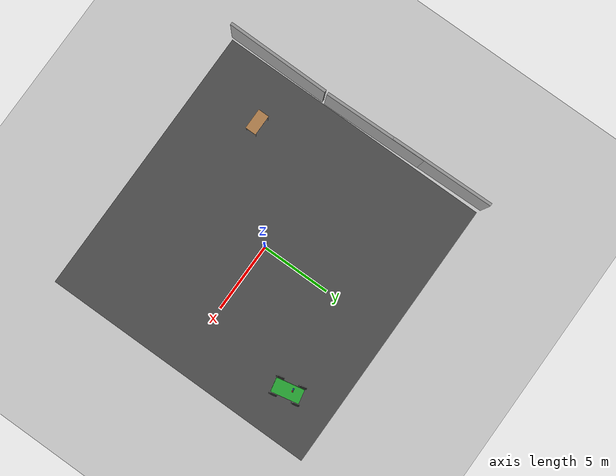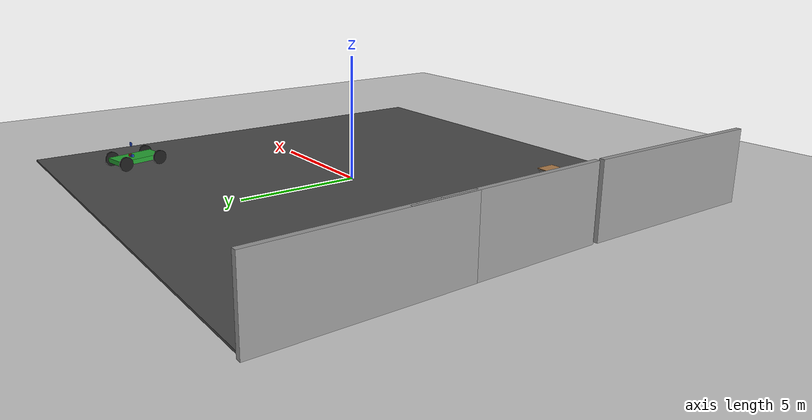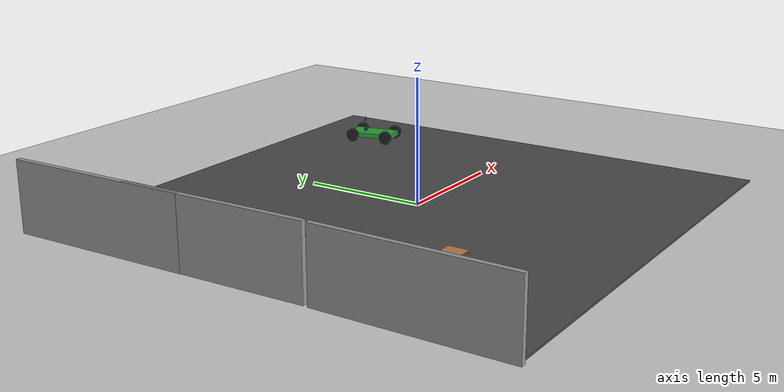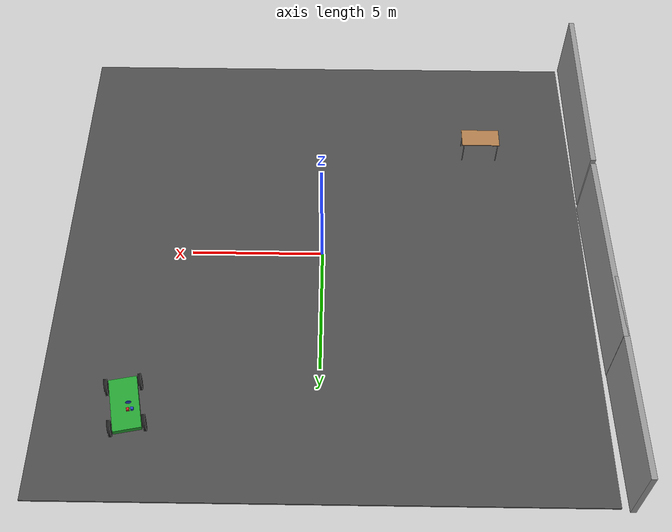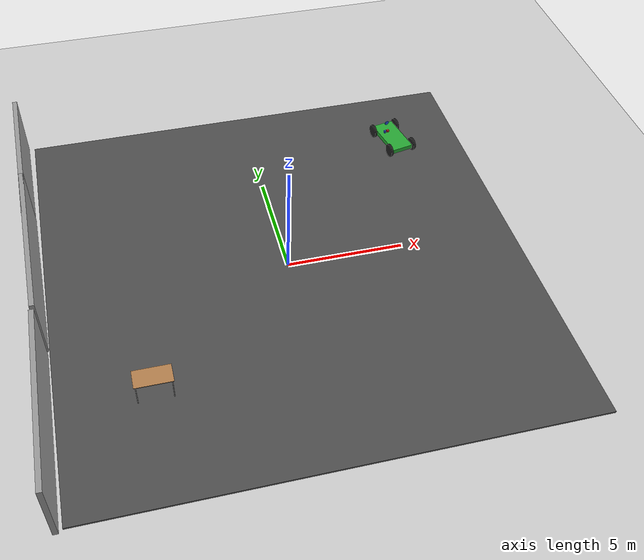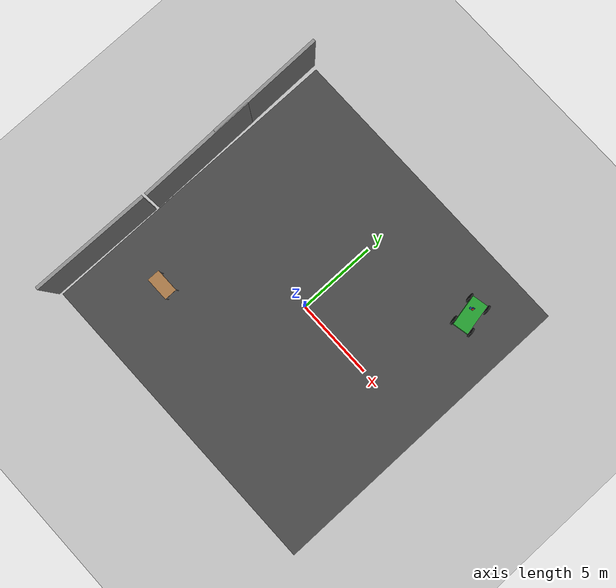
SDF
<sdf version="1.7">
 <world name="default">
  <light name="sun" type="directional">
   <pose>0 0 10 0 -0 0</pose>
   <diffuse>0.8 0.8 0.8 1</diffuse>
   <specular>0.2 0.2 0.2 1</specular>
   <attenuation>
    <range>1000</range>
    <constant>0.9</constant>
    <linear>0.01</linear>
    <quadratic>0.001</quadratic>
   </attenuation>
   <direction>-0.5 0.1 -0.9</direction>
   <spot><inner_angle>0</inner_angle><outer_angle>0</outer_angle><falloff>0</falloff></spot>
  </light>
  <model name="ground_plane">
   <static>1</static>
   <link name="link">
    <collision name="collision">
     <geometry><plane><normal>0 0 1</normal><size>100 100</size></plane></geometry>
     <surface><friction><ode><mu>100</mu><mu2>50</mu2></ode></friction></surface>
    </collision>
    <visual name="visual">
     <cast_shadows>0</cast_shadows>
     <geometry><plane><normal>0 0 1</normal><size>100 100</size></plane></geometry>
     <material>
      <script><uri>file://media/materials/scripts/gazebo.material</uri><name>Gazebo/Grey</name></script>
     </material>
    </visual>
   </link>
  </model>
  <gravity>0 0 -9.8</gravity>
  <magnetic_field>6e-06 2.3e-05 -4.2e-05</magnetic_field>
  <atmosphere type="adiabatic"/>
  <physics type="ode">
   <max_step_size>0.002</max_step_size>
   <real_time_factor>1</real_time_factor>
   <real_time_update_rate>400</real_time_update_rate>
  </physics>
  <scene><ambient>0.4 0.4 0.4 1</ambient><background>0.7 0.7 0.7 1</background><shadows>1</shadows></scene>
  <spherical_coordinates>
   <surface_model>EARTH_WGS84</surface_model>
   <latitude_deg>38.42390688</latitude_deg>
   <longitude_deg>110.7852678</longitude_deg>
   <elevation>488.0</elevation>
   <heading_deg>180</heading_deg>
  </spherical_coordinates>
  <model name="asphalt_plane">
   <static>1</static>
   <link name="link">
    <collision name="collision"><geometry><box><size>20 20 0.1</size></box></geometry></collision>
    <visual name="visual">
     <cast_shadows>0</cast_shadows>
     <geometry><box><size>20 20 0.1</size></box></geometry>
     <material>
      <script>
       <uri>model://asphalt_plane/materials/scripts</uri>
       <uri>model://asphalt_plane/materials/textures</uri>
       <name>vrc/asphalt</name>
      </script>
     </material>
    </visual>
   </link>
   <pose>-0.066287 0.086676 0 0 -0 0</pose>
  </model>
  <model name="grey_wall">
   <static>1</static>
   <link name="link">
    <pose>0 0 1.4 0 -0 0</pose>
    <collision name="collision"><geometry><box><size>7.5 0.2 2.8</size></box></geometry></collision>
    <visual name="visual">
     <cast_shadows>0</cast_shadows>
     <geometry><box><size>7.5 0.2 2.8</size></box></geometry>
     <material>
      <script>
       <uri>model://grey_wall/materials/scripts</uri>
       <uri>model://grey_wall/materials/textures</uri>
       <name>vrc/grey_wall</name>
      </script>
     </material>
    </visual>
   </link>
   <pose>-10.2691 -6.29918 0 -0.000678 0.001381 -1.58062</pose>
  </model>
  <model name="grey_wall_clone">
   <static>1</static>
   <link name="link">
    <pose>0 0 1.4 0 -0 0</pose>
    <collision name="collision"><geometry><box><size>7.5 0.2 2.8</size></box></geometry></collision>
    <visual name="visual">
     <cast_shadows>0</cast_shadows>
     <geometry><box><size>7.5 0.2 2.8</size></box></geometry>
     <material>
      <script>
       <uri>model://grey_wall/materials/scripts</uri>
       <uri>model://grey_wall/materials/textures</uri>
       <name>vrc/grey_wall</name>
      </script>
     </material>
    </visual>
   </link>
   <pose>-10.2657 1.37707 0 0 -0 1.58739</pose>
  </model>
  <model name="grey_wall_clone_clone">
   <static>1</static>
   <link name="link">
    <pose>0 0 1.4 0 -0 0</pose>
    <collision name="collision"><geometry><box><size>7.5 0.2 2.8</size></box></geometry></collision>
    <visual name="visual">
     <cast_shadows>0</cast_shadows>
     <geometry><box><size>7.5 0.2 2.8</size></box></geometry>
     <material>
      <script>
       <uri>model://grey_wall/materials/scripts</uri>
       <uri>model://grey_wall/materials/textures</uri>
       <name>vrc/grey_wall</name>
      </script>
     </material>
    </visual>
   </link>
   <pose>-10.3624 6.45785 0 0 -0 1.58739</pose>
  </model>
  <light name="user_directional_light_0" type="directional">
   <pose>-5.63054 -11.2657 1 0 -0 0</pose>
   <diffuse>0.5 0.5 0.5 1</diffuse>
   <specular>0.1 0.1 0.1 1</specular>
   <direction>0.1 0.1 -0.9</direction>
   <attenuation>
    <range>20</range>
    <constant>0.5</constant>
    <linear>0.01</linear>
    <quadratic>0.001</quadratic>
   </attenuation>
   <spot><inner_angle>0</inner_angle><outer_angle>0</outer_angle><falloff>0</falloff></spot>
  </light>
  <light name="user_directional_light_1" type="directional">
   <pose>10.4762 9.60881 1 0 -0 0</pose>
   <diffuse>0.5 0.5 0.5 1</diffuse>
   <specular>0.1 0.1 0.1 1</specular>
   <direction>0.1 0.1 -0.9</direction>
   <attenuation>
    <range>20</range>
    <constant>0.5</constant>
    <linear>0.01</linear>
    <quadratic>0.001</quadratic>
   </attenuation>
   <spot><inner_angle>0</inner_angle><outer_angle>0</outer_angle><falloff>0</falloff></spot>
  </light>
  <audio><device>default</device></audio>
  <model name="marble_1_5cm">
   <link name="link">
    <pose>0 0 0.0075 0 -0 0</pose>
    <inertial>
     <mass>0.0062</mass>
     <inertia>
      <ixx>1.395e-07</ixx>
      <ixy>0</ixy>
      <ixz>0</ixz>
      <iyy>1.395e-07</iyy>
      <iyz>0</iyz>
      <izz>1.395e-07</izz>
     </inertia>
    </inertial>
    <collision name="collision">
     <geometry><sphere><radius>0.0075</radius></sphere></geometry>
     <surface>
      <contact>
       <poissons_ratio>0.22</poissons_ratio>
       <elastic_modulus>5.1e+10</elastic_modulus>
       <ode><kp>100000</kp><kd>100</kd><max_vel>100</max_vel><min_depth>0.001</min_depth></ode>
      </contact>
      <friction>
       <torsional>
        <coefficient>1</coefficient>
        <use_patch_radius>0</use_patch_radius>
        <surface_radius>0.01</surface_radius>
       </torsional>
      </friction>
     </surface>
    </collision>
    <visual name="visual">
     <geometry><sphere><radius>0.0075</radius></sphere></geometry>
     <material>
      <script><uri>file://media/materials/scripts/gazebo.material</uri><name>Gazebo/Blue</name></script>
     </material>
    </visual>
    <velocity_decay><linear>0</linear><angular>0.005</angular></velocity_decay>
   </link>
   <pose>-0.928945 -7.80884 0.048999 0 -0 0</pose>
  </model>
  <model name="table">
   <static>1</static>
   <link name="link">
    <collision name="surface">
     <pose>0 0 1 0 -0 0</pose>
     <geometry><box><size>1.5 0.8 0.03</size></box></geometry>
     <surface><friction><ode><mu>0.6</mu><mu2>0.6</mu2></ode></friction></surface>
    </collision>
    <visual name="visual1">
     <pose>0 0 1 0 -0 0</pose>
     <geometry><box><size>1.5 0.8 0.03</size></box></geometry>
     <material>
      <script><uri>file://media/materials/scripts/gazebo.material</uri><name>Gazebo/Wood</name></script>
     </material>
    </visual>
    <collision name="front_left_leg">
     <pose>0.68 0.38 0.5 0 -0 0</pose>
     <geometry><cylinder><radius>0.02</radius><length>1</length></cylinder></geometry>
    </collision>
    <visual name="front_left_leg">
     <pose>0.68 0.38 0.5 0 -0 0</pose>
     <geometry><cylinder><radius>0.02</radius><length>1</length></cylinder></geometry>
     <material>
      <script><uri>file://media/materials/scripts/gazebo.material</uri><name>Gazebo/Grey</name></script>
     </material>
    </visual>
    <collision name="front_right_leg">
     <pose>0.68 -0.38 0.5 0 -0 0</pose>
     <geometry><cylinder><radius>0.02</radius><length>1</length></cylinder></geometry>
    </collision>
    <visual name="front_right_leg">
     <pose>0.68 -0.38 0.5 0 -0 0</pose>
     <geometry><cylinder><radius>0.02</radius><length>1</length></cylinder></geometry>
     <material>
      <script><uri>file://media/materials/scripts/gazebo.material</uri><name>Gazebo/Grey</name></script>
     </material>
    </visual>
    <collision name="back_right_leg">
     <pose>-0.68 -0.38 0.5 0 -0 0</pose>
     <geometry><cylinder><radius>0.02</radius><length>1</length></cylinder></geometry>
    </collision>
    <visual name="back_right_leg">
     <pose>-0.68 -0.38 0.5 0 -0 0</pose>
     <geometry><cylinder><radius>0.02</radius><length>1</length></cylinder></geometry>
     <material>
      <script><uri>file://media/materials/scripts/gazebo.material</uri><name>Gazebo/Grey</name></script>
     </material>
    </visual>
    <collision name="back_left_leg">
     <pose>-0.68 0.38 0.5 0 -0 0</pose>
     <geometry><cylinder><radius>0.02</radius><length>1</length></cylinder></geometry>
    </collision>
    <visual name="back_left_leg">
     <pose>-0.68 0.38 0.5 0 -0 0</pose>
     <geometry><cylinder><radius>0.02</radius><length>1</length></cylinder></geometry>
     <material>
      <script><uri>file://media/materials/scripts/gazebo.material</uri><name>Gazebo/Grey</name></script>
     </material>
    </visual>
   </link>
   <pose>-6.34686 -5.17133 0 0 -0 0</pose>
  </model>
  <model name="car">
   <link name="chassis">
    <pose>0 0 0.3 0 -0 0</pose>
    <collision name="collision"><geometry><box><size>2 1 0.2</size></box></geometry></collision>
    <visual name="visual">
     <geometry><box><size>2 1 0.2</size></box></geometry>
     <material>
      <script><uri>file://media/materials/scripts/gazebo.material</uri><name>Gazebo/Green</name></script>
     </material>
    </visual>
    <inertial>
     <inertia><ixx>1</ixx><ixy>0</ixy><ixz>0</ixz><iyy>1</iyy><iyz>0</iyz><izz>1</izz></inertia>
     <mass>1</mass>
    </inertial>
   </link>
   <link name="front_left_wheel">
    <pose>0.8 0.6 0.3 -0 1.5707 1.5707</pose>
    <collision name="collision">
     <geometry><cylinder><radius>0.3</radius><length>0.1</length></cylinder></geometry>
    </collision>
    <visual name="visual">
     <geometry><cylinder><radius>0.3</radius><length>0.1</length></cylinder></geometry>
     <material>
      <script><uri>file://media/materials/scripts/gazebo.material</uri><name>Gazebo/Black</name></script>
     </material>
    </visual>
    <inertial>
     <inertia><ixx>1</ixx><ixy>0</ixy><ixz>0</ixz><iyy>1</iyy><iyz>0</iyz><izz>1</izz></inertia>
     <mass>1</mass>
    </inertial>
   </link>
   <link name="front_right_wheel">
    <pose>0.8 -0.6 0.3 -0 1.5707 1.5707</pose>
    <collision name="collision">
     <geometry><cylinder><radius>0.3</radius><length>0.1</length></cylinder></geometry>
    </collision>
    <visual name="visual">
     <geometry><cylinder><radius>0.3</radius><length>0.1</length></cylinder></geometry>
     <material>
      <script><uri>file://media/materials/scripts/gazebo.material</uri><name>Gazebo/Black</name></script>
     </material>
    </visual>
    <inertial>
     <inertia><ixx>1</ixx><ixy>0</ixy><ixz>0</ixz><iyy>1</iyy><iyz>0</iyz><izz>1</izz></inertia>
     <mass>1</mass>
    </inertial>
   </link>
   <link name="back_right_wheel">
    <pose>-0.8 -0.6 0.3 -0 1.5707 1.5707</pose>
    <collision name="collision">
     <geometry><cylinder><radius>0.3</radius><length>0.1</length></cylinder></geometry>
    </collision>
    <visual name="visual">
     <geometry><cylinder><radius>0.3</radius><length>0.1</length></cylinder></geometry>
     <material>
      <script><uri>file://media/materials/scripts/gazebo.material</uri><name>Gazebo/Black</name></script>
     </material>
    </visual>
    <inertial>
     <inertia><ixx>1</ixx><ixy>0</ixy><ixz>0</ixz><iyy>1</iyy><iyz>0</iyz><izz>1</izz></inertia>
     <mass>1</mass>
    </inertial>
   </link>
   <link name="back_left_wheel">
    <pose>-0.8 0.6 0.3 -0 1.5707 1.5707</pose>
    <collision name="collision">
     <geometry><cylinder><radius>0.3</radius><length>0.1</length></cylinder></geometry>
    </collision>
    <visual name="visual">
     <geometry><cylinder><radius>0.3</radius><length>0.1</length></cylinder></geometry>
     <material>
      <script><uri>file://media/materials/scripts/gazebo.material</uri><name>Gazebo/Black</name></script>
     </material>
    </visual>
    <inertial>
     <inertia><ixx>1</ixx><ixy>0</ixy><ixz>0</ixz><iyy>1</iyy><iyz>0</iyz><izz>1</izz></inertia>
     <mass>1</mass>
    </inertial>
   </link>
   <link name="gas_pedal">
    <pose>0.3 0.1 0.5 0 -0 0</pose>
    <collision name="collision"><geometry><box><size>0.1 0.1 0.1</size></box></geometry></collision>
    <visual name="visual">
     <geometry><box><size>0.1 0.1 0.1</size></box></geometry>
     <material>
      <script><uri>file://media/materials/scripts/gazebo.material</uri><name>Gazebo/Red</name></script>
     </material>
    </visual>
    <inertial>
     <inertia><ixx>1</ixx><ixy>0</ixy><ixz>0</ixz><iyy>1</iyy><iyz>0</iyz><izz>1</izz></inertia>
     <mass>1</mass>
    </inertial>
   </link>
   <link name="brake_pedal">
    <pose>0.3 0.25 0.5 0 -0 0</pose>
    <collision name="collision"><geometry><box><size>0.1 0.1 0.1</size></box></geometry></collision>
    <visual name="visual">
     <geometry><box><size>0.1 0.1 0.1</size></box></geometry>
     <material>
      <script><uri>file://media/materials/scripts/gazebo.material</uri><name>Gazebo/Blue</name></script>
     </material>
    </visual>
    <inertial>
     <inertia><ixx>1</ixx><ixy>0</ixy><ixz>0</ixz><iyy>1</iyy><iyz>0</iyz><izz>1</izz></inertia>
     <mass>1</mass>
    </inertial>
   </link>
   <link name="steering_wheel">
    <pose>0.3 0.2 1 0 1.5707 0</pose>
    <collision name="collision">
     <geometry><cylinder><radius>0.1</radius><length>0.01</length></cylinder></geometry>
    </collision>
    <visual name="visual">
     <geometry><cylinder><radius>0.1</radius><length>0.01</length></cylinder></geometry>
     <material>
      <script><uri>file://media/materials/scripts/gazebo.material</uri><name>Gazebo/Blue</name></script>
     </material>
    </visual>
    <inertial>
     <inertia><ixx>1</ixx><ixy>0</ixy><ixz>0</ixz><iyy>1</iyy><iyz>0</iyz><izz>1</izz></inertia>
     <mass>1</mass>
    </inertial>
   </link>
   <joint name="gas_joint" type="prismatic">
    <parent>chassis</parent>
    <child>gas_pedal</child>
    <axis>
     <xyz expressed_in="__model__">1 0 0</xyz>
     <limit><lower>0</lower><upper>0.2</upper></limit>
     <dynamics><spring_reference>0</spring_reference><spring_stiffness>0</spring_stiffness></dynamics>
    </axis>
   </joint>
   <joint name="brake_joint" type="prismatic">
    <parent>chassis</parent>
    <child>brake_pedal</child>
    <axis>
     <xyz expressed_in="__model__">1 0 0</xyz>
     <limit><lower>0</lower><upper>0.2</upper></limit>
     <dynamics><spring_reference>0</spring_reference><spring_stiffness>0</spring_stiffness></dynamics>
    </axis>
   </joint>
   <joint name="steering_joint" type="revolute">
    <parent>chassis</parent>
    <child>steering_wheel</child>
    <axis>
     <xyz expressed_in="__model__">1 0 0</xyz>
     <limit><lower>-7.853</lower><upper>7.853</upper></limit>
     <dynamics><spring_reference>0</spring_reference><spring_stiffness>0</spring_stiffness></dynamics>
    </axis>
   </joint>
   <joint name="front_left_joint" type="revolute2">
    <parent>chassis</parent>
    <child>front_left_wheel</child>
    <axis>
     <xyz expressed_in="__model__">0 0 1</xyz>
     <limit><lower>-0.0685089</lower><upper>-0.0685089</upper></limit>
     <dynamics><spring_reference>0</spring_reference><spring_stiffness>0</spring_stiffness></dynamics>
    </axis>
    <axis2>
     <xyz expressed_in="__model__">0 1 0</xyz>
     <limit><upper>1e+16</upper><lower>-1e+16</lower></limit>
     <dynamics><spring_reference>0</spring_reference><spring_stiffness>0</spring_stiffness></dynamics>
    </axis2>
    <physics><ode><limit><cfm>0</cfm><erp>0.9</erp></limit></ode></physics>
   </joint>
   <joint name="front_right_joint" type="revolute2">
    <parent>chassis</parent>
    <child>front_right_wheel</child>
    <axis>
     <xyz expressed_in="__model__">0 0 1</xyz>
     <limit><lower>-0.0685089</lower><upper>-0.0685089</upper></limit>
     <dynamics><spring_reference>0</spring_reference><spring_stiffness>0</spring_stiffness></dynamics>
    </axis>
    <axis2>
     <xyz expressed_in="__model__">0 1 0</xyz>
     <limit><upper>1e+16</upper><lower>-1e+16</lower></limit>
     <dynamics><spring_reference>0</spring_reference><spring_stiffness>0</spring_stiffness></dynamics>
    </axis2>
    <physics><ode><limit><cfm>0</cfm><erp>0.9</erp></limit></ode></physics>
   </joint>
   <joint name="back_right_joint" type="revolute2">
    <parent>chassis</parent>
    <child>back_right_wheel</child>
    <axis>
     <xyz expressed_in="__model__">0 0 1</xyz>
     <limit><lower>0</lower><upper>0</upper></limit>
     <dynamics><spring_reference>0</spring_reference><spring_stiffness>0</spring_stiffness></dynamics>
    </axis>
    <axis2>
     <xyz expressed_in="__model__">0 1 0</xyz>
     <limit><upper>1e+16</upper><lower>-1e+16</lower></limit>
     <dynamics><spring_reference>0</spring_reference><spring_stiffness>0</spring_stiffness></dynamics>
    </axis2>
    <physics><ode><limit><cfm>0</cfm><erp>0.9</erp></limit></ode></physics>
   </joint>
   <joint name="back_left_joint" type="revolute2">
    <parent>chassis</parent>
    <child>back_left_wheel</child>
    <axis>
     <xyz expressed_in="__model__">0 0 1</xyz>
     <limit><lower>0</lower><upper>0</upper></limit>
     <dynamics><spring_reference>0</spring_reference><spring_stiffness>0</spring_stiffness></dynamics>
    </axis>
    <axis2>
     <xyz expressed_in="__model__">0 1 0</xyz>
     <limit><upper>1e+16</upper><lower>-1e+16</lower></limit>
     <dynamics><spring_reference>0</spring_reference><spring_stiffness>0</spring_stiffness></dynamics>
    </axis2>
    <physics><ode><limit><cfm>0</cfm><erp>0.9</erp></limit></ode></physics>
   </joint>
   <plugin name="vehicle" filename="libVehiclePlugin.so">
    <front_left>front_left_joint</front_left>
    <front_right>front_right_joint</front_right>
    <back_left>back_left_joint</back_left>
    <back_right>back_right_joint</back_right>
    <gas>gas_joint</gas>
    <brake>brake_joint</brake>
    <steering>steering_joint</steering>
    <front_power>10</front_power>
    <rear_power>10</rear_power>
    <tire_angle_range>0.5</tire_angle_range>
    <max_speed>10</max_speed>
    <aero_load>0.1</aero_load>
   </plugin>
   <pose>6.75159 6.69075 0.050239 -0.000389 7e-06 1.77206</pose>
  </model>
 </world>
</sdf>
